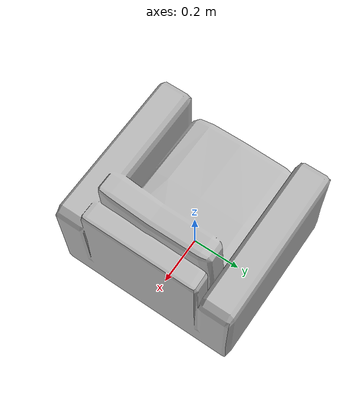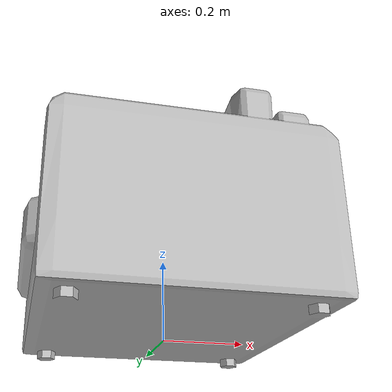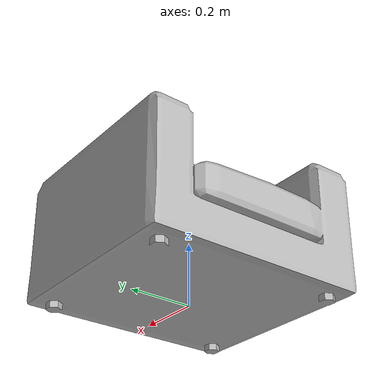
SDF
<?xml version="1.0"?>

<sdf version="1.6">
  <model name='MiniSofa'>
    <link name="body">
      <pose>0 0 0 0 0 -1.57079632679</pose>

      <visual name="visual">
        <geometry>
          <mesh>
            <uri>model://MiniSofa/meshes/minisofa.obj</uri>
            <scale>1.00 1.00 1.00</scale>
          </mesh>
        </geometry>
      </visual>

      <collision name="collision">
        <geometry>
          <mesh>
            <uri>model://MiniSofa/meshes/minisofa.obj</uri>
            <scale>1.00 1.00 1.00</scale>
          </mesh>
        </geometry>
      </collision>

    </link>
  </model>
</sdf>
